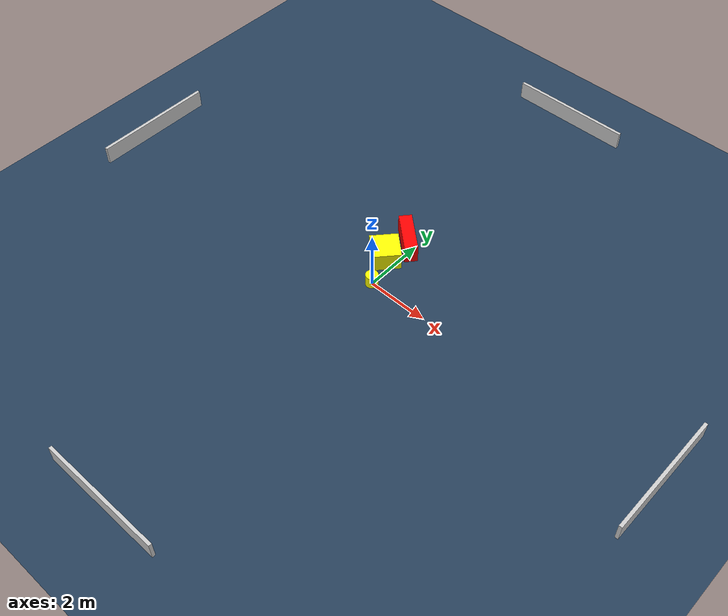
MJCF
<?xml version="1.0" ?>
<mujoco model="generated_environment">
  <option timestep="0.01" integrator="RK4" cone="elliptic"/>
  <default>
    <geom density="1"/>
  </default>
  <asset>
    <texture builtin="gradient" height="3072" name="skybox" rgb1="0.3 0.5 0.7" rgb2="0 0 0" type="skybox" width="512"/>
    <texture builtin="checker" height="300" name="groundplane" rgb1="0.2 0.3 0.4" rgb2="0.1 0.2 0.3" type="2d" width="300"/>
    <material name="groundplane" reflectance="0.2" texrepeat="5 5" texture="groundplane"/>
  </asset>
  <worldbody>
    <light dir="0 0 -1" directional="true" pos="0 0 1.5"/>
    <geom condim="3" friction="0.5 0.005 0.001" material="groundplane" name="floor" pos="0 0 0" size="0 0 0.05" type="plane"/>
    <body name="walls">
      <geom name="wall_1" condim="4" pos="-10.0 0.0 0.3" rgba="0.800000011920929 0.800000011920929 0.800000011920929 1.0" size="0.05 2.0 0.3" type="box"/>
      <geom name="wall_2" condim="4" pos="10.0 0.0 0.3" rgba="0.800000011920929 0.800000011920929 0.800000011920929 1.0" size="0.05 2.0 0.3" type="box"/>
      <geom name="wall_3" condim="4" pos="0.0 -10.0 0.3" rgba="0.800000011920929 0.800000011920929 0.800000011920929 1.0" size="2.0 0.05 0.3" type="box"/>
      <geom name="wall_4" condim="4" pos="0.0 10.0 0.3" rgba="0.800000011920929 0.800000011920929 0.800000011920929 1.0" size="2.0 0.05 0.3" type="box"/>
    </body>
    <body name="robot">
      <joint name="joint_x" type="slide" pos="0 0 0" axis="1 0 0"/>
      <joint name="joint_y" type="slide" pos="0 0 0" axis="0 1 0"/>
      <geom name="robot" type="cylinder" pos="0.0 0.0 0.2" size="0.2 0.2 0.0" mass="5.0" friction="1.0 0.005 0.0001" condim="4" rgba="1.0 1.0 0.0 1.0"/>
    </body>
    <body name="obstacle_1_movable">
      <geom name="obstacle_1_movable" condim="4" pos="-0.37593408000099426 1.0093523144934298 0.3" euler="0 0 228.65209931739864" friction="0.0 0.005 0.001" rgba="1.0 1.0 0.0 1.0" size="0.44520061355450097 0.44654227058630186 0.3" type="box" mass="0.1"/>
      <joint type="free"/>
    </body>
    <body name="obstacle_2_static">
      <geom name="obstacle_2_static" condim="4" pos="-0.24403986219150275 1.8976340801987175 0.3" euler="0 0 319.10438262119686" friction="0.0 0.005 0.001" rgba="1.0 0.0 0.0 1.0" size="0.6933333437975465 0.20746677394249646 0.3" type="box"/>
    </body>
  </worldbody>
  <actuator>
    <motor name="actuator_x" joint="joint_x" gear="1" ctrlrange="-1 1"/>
    <motor name="actuator_y" joint="joint_y" gear="1" ctrlrange="-1 1"/>
  </actuator>
</mujoco>
